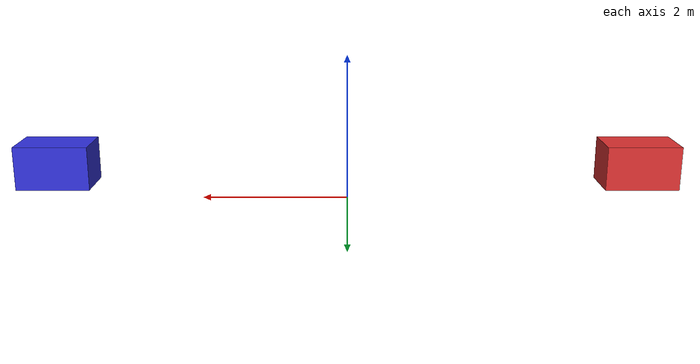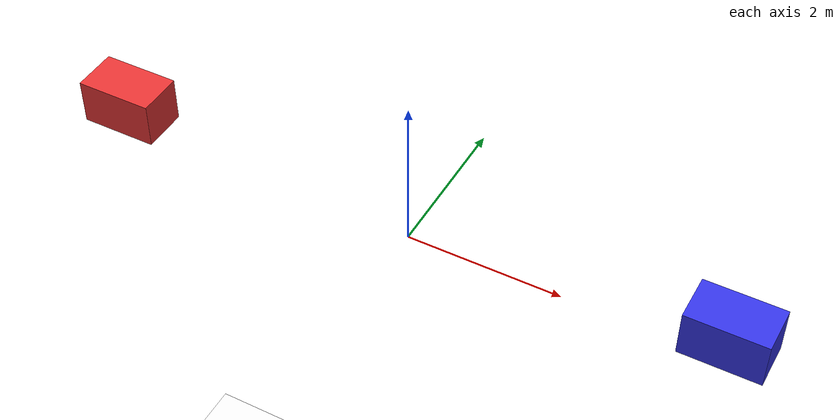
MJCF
<mujoco>
  <option gravity="0 0 -9.81"/>
  <worldbody>
    <body name="track" pos="0 0 -10">
      <geom type="plane" size="80 10 0.1" rgba="0.95 0.95 0.95 1" friction="0.01 0.01 0.01"/>
    </body>
    <body name="cart_1" pos="-4 0 0.5">
      <geom type="box" size="0.5 0.3 0.3" mass="4" rgba="0.9 0.2 0.2 1"/>
      <joint type="free"/>
    </body>
    <body name="cart_2" pos="4 0 0.5">
      <geom type="box" size="0.5 0.3 0.3" mass="4" rgba="0.2 0.2 0.9 1"/>
      <joint type="free"/>
    </body>
  </worldbody>
</mujoco>
